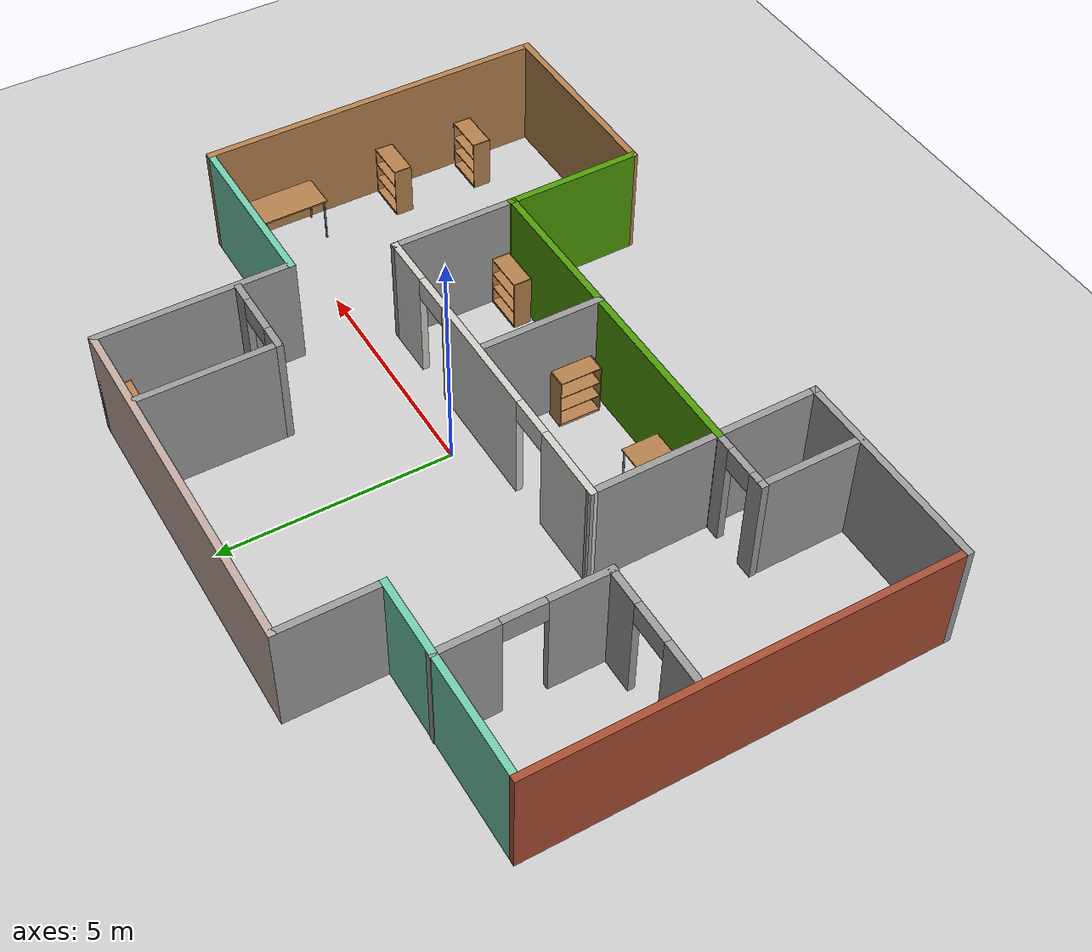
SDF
<sdf version="1.6">
 <world name="default">
  <light name="sun" type="directional">
   <pose>0 0 10 0 -0 0</pose>
   <diffuse>0.8 0.8 0.8 1</diffuse>
   <specular>0.2 0.2 0.2 1</specular>
   <attenuation>
    <range>1000</range>
    <constant>0.9</constant>
    <linear>0.01</linear>
    <quadratic>0.001</quadratic>
   </attenuation>
   <direction>-0.5 0.1 -0.9</direction>
  </light>
  <model name="ground_plane">
   <static>1</static>
   <link name="link">
    <collision name="collision">
     <geometry><plane><normal>0 0 1</normal><size>100 100</size></plane></geometry>
     <surface>
      <contact><collide_bitmask>65535</collide_bitmask></contact>
      <friction><ode><mu>100</mu><mu2>50</mu2></ode></friction>
     </surface>
    </collision>
    <visual name="visual">
     <cast_shadows>0</cast_shadows>
     <geometry><plane><normal>0 0 1</normal><size>100 100</size></plane></geometry>
     <material>
      <script><uri>file://media/materials/scripts/gazebo.material</uri><name>Gazebo/Grey</name></script>
     </material>
    </visual>
   </link>
  </model>
  <gravity>0 0 -9.8</gravity>
  <magnetic_field>6e-06 2.3e-05 -4.2e-05</magnetic_field>
  <atmosphere type="adiabatic"/>
  <physics name="default_physics" default="0" type="ode">
   <max_step_size>0.001</max_step_size>
   <real_time_factor>1</real_time_factor>
   <real_time_update_rate>1000</real_time_update_rate>
  </physics>
  <scene><ambient>0.4 0.4 0.4 1</ambient><background>0.7 0.7 0.7 1</background><shadows>1</shadows></scene>
  <audio><device>default</device></audio>
  <spherical_coordinates>
   <surface_model>EARTH_WGS84</surface_model>
   <latitude_deg>0</latitude_deg>
   <longitude_deg>0</longitude_deg>
   <elevation>0</elevation>
   <heading_deg>0</heading_deg>
  </spherical_coordinates>
  <model name="details-world">
   <pose>-0.21143 -0.40353 0 0 -0 0</pose>
   <link name="Wall_10">
    <collision name="Wall_10_Collision">
     <geometry><box><size>4.5 0.15 2.5</size></box></geometry>
     <pose>0 0 1.25 0 -0 0</pose>
    </collision>
    <visual name="Wall_10_Visual">
     <pose>0 0 1.25 0 -0 0</pose>
     <geometry><box><size>4.5 0.15 2.5</size></box></geometry>
     <material>
      <script><uri>file://media/materials/scripts/gazebo.material</uri><name>Gazebo/Grey</name></script>
      <ambient>1 1 1 1</ambient>
     </material>
     <meta><layer>0</layer></meta>
    </visual>
    <pose>-5.85 -5.09966 0 0 -0 3.14159</pose>
   </link>
   <link name="Wall_11">
    <collision name="Wall_11_Collision">
     <geometry><box><size>9 0.15 2.5</size></box></geometry>
     <pose>0 0 1.25 0 -0 0</pose>
    </collision>
    <visual name="Wall_11_Visual">
     <pose>0 0 1.25 0 -0 0</pose>
     <geometry><box><size>9 0.15 2.5</size></box></geometry>
     <material>
      <script><uri>file://media/materials/scripts/gazebo.material</uri><name>Gazebo/Bricks</name></script>
      <ambient>1 1 1 1</ambient>
     </material>
     <meta><layer>0</layer></meta>
    </visual>
    <pose>-8.025 -0.674659 0 0 -0 1.5708</pose>
   </link>
   <link name="Wall_12">
    <collision name="Wall_12_Collision">
     <geometry><box><size>4.5 0.15 2.5</size></box></geometry>
     <pose>0 0 1.25 0 -0 0</pose>
    </collision>
    <visual name="Wall_12_Visual">
     <pose>0 0 1.25 0 -0 0</pose>
     <geometry><box><size>4.5 0.15 2.5</size></box></geometry>
     <material>
      <script><uri>file://media/materials/scripts/gazebo.material</uri><name>Gazebo/Grey</name></script>
      <ambient>0.435294 0.796078 0.67451 1</ambient>
     </material>
     <meta><layer>0</layer></meta>
    </visual>
    <pose>-5.85 3.75034 0 0 -0 0</pose>
   </link>
   <link name="Wall_13">
    <collision name="Wall_13_Collision">
     <geometry><box><size>2.25 0.15 2.5</size></box></geometry>
     <pose>0 0 1.25 0 -0 0</pose>
    </collision>
    <visual name="Wall_13_Visual">
     <pose>0 0 1.25 0 -0 0</pose>
     <geometry><box><size>2.25 0.15 2.5</size></box></geometry>
     <material>
      <script><uri>file://media/materials/scripts/gazebo.material</uri><name>Gazebo/Grey</name></script>
      <ambient>1 1 1 1</ambient>
     </material>
     <meta><layer>0</layer></meta>
    </visual>
    <pose>-3.675 4.80034 0 0 -0 1.5708</pose>
   </link>
   <link name="Wall_17">
    <pose>3.23092 2.89683 0 0 -0 3.14159</pose>
    <visual name="Wall_17_Visual_0">
     <pose>-0.732822 0 1.25 0 -0 0</pose>
     <geometry><box><size>0.534355 0.15 2.5</size></box></geometry>
     <material>
      <script><uri>file://media/materials/scripts/gazebo.material</uri><name>Gazebo/Grey</name></script>
      <ambient>1 1 1 1</ambient>
     </material>
     <meta><layer>0</layer></meta>
    </visual>
    <collision name="Wall_17_Collision_0">
     <geometry><box><size>0.534355 0.15 2.5</size></box></geometry>
     <pose>-0.732822 0 1.25 0 -0 0</pose>
    </collision>
    <visual name="Wall_17_Visual_1">
     <pose>0.717178 0 1.25 0 -0 0</pose>
     <geometry><box><size>0.565645 0.15 2.5</size></box></geometry>
     <material>
      <script><uri>file://media/materials/scripts/gazebo.material</uri><name>Gazebo/Grey</name></script>
      <ambient>1 1 1 1</ambient>
     </material>
     <meta><layer>0</layer></meta>
    </visual>
    <collision name="Wall_17_Collision_1">
     <geometry><box><size>0.565645 0.15 2.5</size></box></geometry>
     <pose>0.717178 0 1.25 0 -0 0</pose>
    </collision>
    <visual name="Wall_17_Visual_2">
     <pose>-0.015645 0 2.25 0 -0 0</pose>
     <geometry><box><size>0.9 0.15 0.5</size></box></geometry>
     <material>
      <script><uri>file://media/materials/scripts/gazebo.material</uri><name>Gazebo/Grey</name></script>
      <ambient>1 1 1 1</ambient>
     </material>
     <meta><layer>0</layer></meta>
    </visual>
    <collision name="Wall_17_Collision_2">
     <geometry><box><size>0.9 0.15 0.5</size></box></geometry>
     <pose>-0.015645 0 2.25 0 -0 0</pose>
    </collision>
   </link>
   <link name="Wall_18">
    <collision name="Wall_18_Collision">
     <geometry><box><size>3 0.15 2.5</size></box></geometry>
     <pose>0 0 1.25 0 -0 0</pose>
    </collision>
    <visual name="Wall_18_Visual">
     <pose>0 0 1.25 0 -0 0</pose>
     <geometry><box><size>3 0.15 2.5</size></box></geometry>
     <material>
      <script><uri>file://media/materials/scripts/gazebo.material</uri><name>Gazebo/Grey</name></script>
      <ambient>1 1 1 1</ambient>
     </material>
     <meta><layer>0</layer></meta>
    </visual>
    <pose>2.30592 4.32183 0 0 -0 1.5708</pose>
   </link>
   <link name="Wall_2">
    <collision name="Wall_2_Collision">
     <geometry><box><size>8 0.15 2.5</size></box></geometry>
     <pose>0 0 1.25 0 -0 0</pose>
    </collision>
    <visual name="Wall_2_Visual">
     <pose>0 0 1.25 0 -0 0</pose>
     <geometry><box><size>8 0.15 2.5</size></box></geometry>
     <material>
      <script><uri>file://media/materials/scripts/gazebo.material</uri><name>Gazebo/Grey</name></script>
      <ambient>0.760784 0.662745 0.627451 1</ambient>
     </material>
     <meta><layer>0</layer></meta>
    </visual>
    <pose>0.25 5.85034 0 0 -0 0</pose>
   </link>
   <link name="Wall_23">
    <pose>-0.0399 -0.285362 0 0 -0 0</pose>
    <visual name="Wall_23_Visual_0">
     <pose>-2.91108 0 1.25 0 -0 0</pose>
     <geometry><box><size>1.67783 0.15 2.5</size></box></geometry>
     <material>
      <script><uri>file://media/materials/scripts/gazebo.material</uri><name>Gazebo/CeilingTiled</name></script>
      <ambient>1 1 1 1</ambient>
     </material>
     <meta><layer>0</layer></meta>
    </visual>
    <collision name="Wall_23_Collision_0">
     <geometry><box><size>1.67783 0.15 2.5</size></box></geometry>
     <pose>-2.91108 0 1.25 0 -0 0</pose>
    </collision>
    <visual name="Wall_23_Visual_1">
     <pose>0.250422 0 1.25 0 -0 0</pose>
     <geometry><box><size>2.84517 0.15 2.5</size></box></geometry>
     <material>
      <script><uri>file://media/materials/scripts/gazebo.material</uri><name>Gazebo/CeilingTiled</name></script>
      <ambient>1 1 1 1</ambient>
     </material>
     <meta><layer>0</layer></meta>
    </visual>
    <collision name="Wall_23_Collision_1">
     <geometry><box><size>2.84517 0.15 2.5</size></box></geometry>
     <pose>0.250422 0 1.25 0 -0 0</pose>
    </collision>
    <visual name="Wall_23_Visual_2">
     <pose>3.16151 0 1.25 0 -0 0</pose>
     <geometry><box><size>1.17699 0.15 2.5</size></box></geometry>
     <material>
      <script><uri>file://media/materials/scripts/gazebo.material</uri><name>Gazebo/CeilingTiled</name></script>
      <ambient>1 1 1 1</ambient>
     </material>
     <meta><layer>0</layer></meta>
    </visual>
    <collision name="Wall_23_Collision_2">
     <geometry><box><size>1.17699 0.15 2.5</size></box></geometry>
     <pose>3.16151 0 1.25 0 -0 0</pose>
    </collision>
    <visual name="Wall_23_Visual_3">
     <pose>-1.62217 0 2.25 0 -0 0</pose>
     <geometry><box><size>0.9 0.15 0.5</size></box></geometry>
     <material>
      <script><uri>file://media/materials/scripts/gazebo.material</uri><name>Gazebo/CeilingTiled</name></script>
      <ambient>1 1 1 1</ambient>
     </material>
     <meta><layer>0</layer></meta>
    </visual>
    <collision name="Wall_23_Collision_3">
     <geometry><box><size>0.9 0.15 0.5</size></box></geometry>
     <pose>-1.62217 0 2.25 0 -0 0</pose>
    </collision>
    <visual name="Wall_23_Visual_4">
     <pose>2.12301 0 2.25 0 -0 0</pose>
     <geometry><box><size>0.9 0.15 0.5</size></box></geometry>
     <material>
      <script><uri>file://media/materials/scripts/gazebo.material</uri><name>Gazebo/CeilingTiled</name></script>
      <ambient>1 1 1 1</ambient>
     </material>
     <meta><layer>0</layer></meta>
    </visual>
    <collision name="Wall_23_Collision_4">
     <geometry><box><size>0.9 0.15 0.5</size></box></geometry>
     <pose>2.12301 0 2.25 0 -0 0</pose>
    </collision>
   </link>
   <link name="Wall_24">
    <collision name="Wall_24_Collision">
     <geometry><box><size>2.79139 0.15 2.5</size></box></geometry>
     <pose>0 0 1.25 0 -0 0</pose>
    </collision>
    <visual name="Wall_24_Visual">
     <pose>0 0 1.25 0 -0 0</pose>
     <geometry><box><size>2.79139 0.15 2.5</size></box></geometry>
     <material>
      <script><uri>file://media/materials/scripts/gazebo.material</uri><name>Gazebo/Grey</name></script>
      <ambient>1 1 1 1</ambient>
     </material>
     <meta><layer>0</layer></meta>
    </visual>
    <pose>3.64832 -1.60604 0 0 -0 -1.57085</pose>
   </link>
   <link name="Wall_26">
    <collision name="Wall_26_Collision">
     <geometry><box><size>2.75 0.15 2.5</size></box></geometry>
     <pose>0 0 1.25 0 -0 0</pose>
    </collision>
    <visual name="Wall_26_Visual">
     <pose>0 0 1.25 0 -0 0</pose>
     <geometry><box><size>2.75 0.15 2.5</size></box></geometry>
     <material>
      <script><uri>file://media/materials/scripts/gazebo.material</uri><name>Gazebo/Grey</name></script>
      <ambient>1 1 1 1</ambient>
     </material>
     <meta><layer>0</layer></meta>
    </visual>
    <pose>0.330676 -1.65012 0 0 -0 1.5708</pose>
   </link>
   <link name="Wall_28">
    <pose>-5.34059 2.03423 0 0 -0 -1.5708</pose>
    <visual name="Wall_28_Visual_0">
     <pose>-1.13129 0 1.25 0 -0 0</pose>
     <geometry><box><size>1.34784 0.15 2.5</size></box></geometry>
     <material>
      <script><uri>file://media/materials/scripts/gazebo.material</uri><name>Gazebo/Grey</name></script>
      <ambient>1 1 1 1</ambient>
     </material>
     <meta><layer>0</layer></meta>
    </visual>
    <collision name="Wall_28_Collision_0">
     <geometry><box><size>1.34784 0.15 2.5</size></box></geometry>
     <pose>-1.13129 0 1.25 0 -0 0</pose>
    </collision>
    <visual name="Wall_28_Visual_1">
     <pose>1.12392 0 1.25 0 -0 0</pose>
     <geometry><box><size>1.36258 0.15 2.5</size></box></geometry>
     <material>
      <script><uri>file://media/materials/scripts/gazebo.material</uri><name>Gazebo/Grey</name></script>
      <ambient>1 1 1 1</ambient>
     </material>
     <meta><layer>0</layer></meta>
    </visual>
    <collision name="Wall_28_Collision_1">
     <geometry><box><size>1.36258 0.15 2.5</size></box></geometry>
     <pose>1.12392 0 1.25 0 -0 0</pose>
    </collision>
    <visual name="Wall_28_Visual_2">
     <pose>-0.007369 0 2.25 0 -0 0</pose>
     <geometry><box><size>0.9 0.15 0.5</size></box></geometry>
     <material>
      <script><uri>file://media/materials/scripts/gazebo.material</uri><name>Gazebo/Grey</name></script>
      <ambient>1 1 1 1</ambient>
     </material>
     <meta><layer>0</layer></meta>
    </visual>
    <collision name="Wall_28_Collision_2">
     <geometry><box><size>0.9 0.15 0.5</size></box></geometry>
     <pose>-0.007369 0 2.25 0 -0 0</pose>
    </collision>
   </link>
   <link name="Wall_29">
    <pose>-6.64059 0.327279 0 0 -0 3.14159</pose>
    <visual name="Wall_29_Visual_0">
     <pose>-0.933846 0 1.25 0 -0 0</pose>
     <geometry><box><size>0.882309 0.15 2.5</size></box></geometry>
     <material>
      <script><uri>file://media/materials/scripts/gazebo.material</uri><name>Gazebo/Grey</name></script>
      <ambient>1 1 1 1</ambient>
     </material>
     <meta><layer>0</layer></meta>
    </visual>
    <collision name="Wall_29_Collision_0">
     <geometry><box><size>0.882309 0.15 2.5</size></box></geometry>
     <pose>-0.933846 0 1.25 0 -0 0</pose>
    </collision>
    <visual name="Wall_29_Visual_1">
     <pose>0.891154 0 1.25 0 -0 0</pose>
     <geometry><box><size>0.967691 0.15 2.5</size></box></geometry>
     <material>
      <script><uri>file://media/materials/scripts/gazebo.material</uri><name>Gazebo/Grey</name></script>
      <ambient>1 1 1 1</ambient>
     </material>
     <meta><layer>0</layer></meta>
    </visual>
    <collision name="Wall_29_Collision_1">
     <geometry><box><size>0.967691 0.15 2.5</size></box></geometry>
     <pose>0.891154 0 1.25 0 -0 0</pose>
    </collision>
    <visual name="Wall_29_Visual_2">
     <pose>-0.042691 0 2.25 0 -0 0</pose>
     <geometry><box><size>0.9 0.15 0.5</size></box></geometry>
     <material>
      <script><uri>file://media/materials/scripts/gazebo.material</uri><name>Gazebo/Grey</name></script>
      <ambient>1 1 1 1</ambient>
     </material>
     <meta><layer>0</layer></meta>
    </visual>
    <collision name="Wall_29_Collision_2">
     <geometry><box><size>0.9 0.15 0.5</size></box></geometry>
     <pose>-0.042691 0 2.25 0 -0 0</pose>
    </collision>
   </link>
   <link name="Wall_3">
    <collision name="Wall_3_Collision">
     <geometry><box><size>4.25 0.15 2.5</size></box></geometry>
     <pose>0 0 1.25 0 -0 0</pose>
    </collision>
    <visual name="Wall_3_Visual">
     <pose>0 0 1.25 0 -0 0</pose>
     <geometry><box><size>4.25 0.15 2.5</size></box></geometry>
     <material>
      <script><uri>file://media/materials/scripts/gazebo.material</uri><name>Gazebo/Grey</name></script>
      <ambient>1 1 1 1</ambient>
     </material>
     <meta><layer>0</layer></meta>
    </visual>
    <pose>4.175 3.80034 0 0 -0 -1.5708</pose>
   </link>
   <link name="Wall_31">
    <pose>-4.39906 -2.95396 0 0 -0 3.14159</pose>
    <visual name="Wall_31_Visual_0">
     <pose>-0.526854 0 1.25 0 -0 0</pose>
     <geometry><box><size>0.446292 0.15 2.5</size></box></geometry>
     <material>
      <script><uri>file://media/materials/scripts/gazebo.material</uri><name>Gazebo/Grey</name></script>
      <ambient>1 1 1 1</ambient>
     </material>
     <meta><layer>0</layer></meta>
    </visual>
    <collision name="Wall_31_Collision_0">
     <geometry><box><size>0.446292 0.15 2.5</size></box></geometry>
     <pose>-0.526854 0 1.25 0 -0 0</pose>
    </collision>
    <visual name="Wall_31_Visual_1">
     <pose>0.553445 0 1.25 0 -0 0</pose>
     <geometry><box><size>0.39311 0.15 2.5</size></box></geometry>
     <material>
      <script><uri>file://media/materials/scripts/gazebo.material</uri><name>Gazebo/Grey</name></script>
      <ambient>1 1 1 1</ambient>
     </material>
     <meta><layer>0</layer></meta>
    </visual>
    <collision name="Wall_31_Collision_1">
     <geometry><box><size>0.39311 0.15 2.5</size></box></geometry>
     <pose>0.553445 0 1.25 0 -0 0</pose>
    </collision>
    <visual name="Wall_31_Visual_2">
     <pose>0.026591 0 2.25 0 -0 0</pose>
     <geometry><box><size>0.660598 0.15 0.5</size></box></geometry>
     <material>
      <script><uri>file://media/materials/scripts/gazebo.material</uri><name>Gazebo/Grey</name></script>
      <ambient>1 1 1 1</ambient>
     </material>
     <meta><layer>0</layer></meta>
    </visual>
    <collision name="Wall_31_Collision_2">
     <geometry><box><size>0.660598 0.15 0.5</size></box></geometry>
     <pose>0.026591 0 2.25 0 -0 0</pose>
    </collision>
   </link>
   <link name="Wall_32">
    <collision name="Wall_32_Collision">
     <geometry><box><size>2.23087 0.15 2.5</size></box></geometry>
     <pose>0 0 1.25 0 -0 0</pose>
    </collision>
    <visual name="Wall_32_Visual">
     <pose>0 0 1.25 0 -0 0</pose>
     <geometry><box><size>2.23087 0.15 2.5</size></box></geometry>
     <material>
      <script><uri>file://media/materials/scripts/gazebo.material</uri><name>Gazebo/Grey</name></script>
      <ambient>1 1 1 1</ambient>
     </material>
     <meta><layer>0</layer></meta>
    </visual>
    <pose>-5.05876 -4.00969 0 0 -0 -1.5708</pose>
   </link>
   <link name="Wall_36">
    <collision name="Wall_36_Collision">
     <geometry><box><size>4.96446 0.15 2.5</size></box></geometry>
     <pose>0 0 1.25 0 -0 0</pose>
    </collision>
    <visual name="Wall_36_Visual">
     <pose>0 0 1.25 0 -0 0</pose>
     <geometry><box><size>4.96446 0.15 2.5</size></box></geometry>
     <material>
      <script><uri>file://media/materials/scripts/gazebo.material</uri><name>Gazebo/Grey</name></script>
      <ambient>1 1 1 1</ambient>
     </material>
     <meta><layer>0</layer></meta>
    </visual>
    <pose>-3.69495 -2.69251 0 0 -0 -1.56251</pose>
   </link>
   <link name="Wall_4">
    <collision name="Wall_4_Collision">
     <geometry><box><size>4 0.15 2.5</size></box></geometry>
     <pose>0 0 1.25 0 -0 0</pose>
    </collision>
    <visual name="Wall_4_Visual">
     <pose>0 0 1.25 0 -0 0</pose>
     <geometry><box><size>4 0.15 2.5</size></box></geometry>
     <material>
      <script><uri>file://media/materials/scripts/gazebo.material</uri><name>Gazebo/Grey</name></script>
      <ambient>0.435294 0.796078 0.67451 1</ambient>
     </material>
     <meta><layer>0</layer></meta>
    </visual>
    <pose>6.1 1.75034 0 0 -0 0</pose>
   </link>
   <link name="Wall_5">
    <collision name="Wall_5_Collision">
     <geometry><box><size>7.75 0.15 2.5</size></box></geometry>
     <pose>0 0 1.25 0 -0 0</pose>
    </collision>
    <visual name="Wall_5_Visual">
     <pose>0 0 1.25 0 -0 0</pose>
     <geometry><box><size>7.75 0.15 2.5</size></box></geometry>
     <material>
      <script><uri>file://media/materials/scripts/gazebo.material</uri><name>Gazebo/Wood</name></script>
      <ambient>1 1 1 1</ambient>
     </material>
     <meta><layer>0</layer></meta>
    </visual>
    <pose>8.025 -2.04966 0 0 -0 -1.5708</pose>
   </link>
   <link name="Wall_6">
    <collision name="Wall_6_Collision">
     <geometry><box><size>4.5 0.15 2.5</size></box></geometry>
     <pose>0 0 1.25 0 -0 0</pose>
    </collision>
    <visual name="Wall_6_Visual">
     <pose>0 0 1.25 0 -0 0</pose>
     <geometry><box><size>4.5 0.15 2.5</size></box></geometry>
     <material>
      <script><uri>file://media/materials/scripts/gazebo.material</uri><name>Gazebo/Wood</name></script>
      <ambient>1 1 1 1</ambient>
     </material>
     <meta><layer>0</layer></meta>
    </visual>
    <pose>5.85 -5.84966 0 0 -0 3.14159</pose>
   </link>
   <link name="Wall_7">
    <collision name="Wall_7_Collision">
     <geometry><box><size>3.07307 0.15 2.5</size></box></geometry>
     <pose>0 0 1.25 0 -0 0</pose>
    </collision>
    <visual name="Wall_7_Visual">
     <pose>0 0 1.25 0 -0 0</pose>
     <geometry><box><size>3.07307 0.15 2.5</size></box></geometry>
     <material>
      <script><uri>file://media/materials/scripts/gazebo.material</uri><name>Gazebo/Grey</name></script>
      <ambient>0.305882 0.603922 0.0235294 1</ambient>
     </material>
     <meta><layer>0</layer></meta>
    </visual>
    <pose>3.66162 -4.38819 0 0 -0 1.57995</pose>
   </link>
   <link name="Wall_8">
    <collision name="Wall_8_Collision">
     <geometry><box><size>7.5 0.15 2.5</size></box></geometry>
     <pose>0 0 1.25 0 -0 0</pose>
    </collision>
    <visual name="Wall_8_Visual">
     <pose>0 0 1.25 0 -0 0</pose>
     <geometry><box><size>7.5 0.15 2.5</size></box></geometry>
     <material>
      <script><uri>file://media/materials/scripts/gazebo.material</uri><name>Gazebo/Grey</name></script>
      <ambient>0.305882 0.603922 0.0235294 1</ambient>
     </material>
     <meta><layer>0</layer></meta>
    </visual>
    <pose>-0.026751 -2.95347 0 0 -0 3.14159</pose>
   </link>
   <static>1</static>
  </model>
  <model name="table">
   <static>1</static>
   <link name="link">
    <collision name="surface">
     <pose>0 0 1 0 -0 0</pose>
     <geometry><box><size>1.5 0.8 0.03</size></box></geometry>
     <surface><friction><ode><mu>0.6</mu><mu2>0.6</mu2></ode></friction></surface>
    </collision>
    <visual name="visual1">
     <pose>0 0 1 0 -0 0</pose>
     <geometry><box><size>1.5 0.8 0.03</size></box></geometry>
     <material>
      <script><uri>file://media/materials/scripts/gazebo.material</uri><name>Gazebo/Wood</name></script>
     </material>
    </visual>
    <collision name="front_left_leg">
     <pose>0.68 0.38 0.5 0 -0 0</pose>
     <geometry><cylinder><radius>0.02</radius><length>1</length></cylinder></geometry>
    </collision>
    <visual name="front_left_leg">
     <pose>0.68 0.38 0.5 0 -0 0</pose>
     <geometry><cylinder><radius>0.02</radius><length>1</length></cylinder></geometry>
     <material>
      <script><uri>file://media/materials/scripts/gazebo.material</uri><name>Gazebo/Grey</name></script>
     </material>
    </visual>
    <collision name="front_right_leg">
     <pose>0.68 -0.38 0.5 0 -0 0</pose>
     <geometry><cylinder><radius>0.02</radius><length>1</length></cylinder></geometry>
    </collision>
    <visual name="front_right_leg">
     <pose>0.68 -0.38 0.5 0 -0 0</pose>
     <geometry><cylinder><radius>0.02</radius><length>1</length></cylinder></geometry>
     <material>
      <script><uri>file://media/materials/scripts/gazebo.material</uri><name>Gazebo/Grey</name></script>
     </material>
    </visual>
    <collision name="back_right_leg">
     <pose>-0.68 -0.38 0.5 0 -0 0</pose>
     <geometry><cylinder><radius>0.02</radius><length>1</length></cylinder></geometry>
    </collision>
    <visual name="back_right_leg">
     <pose>-0.68 -0.38 0.5 0 -0 0</pose>
     <geometry><cylinder><radius>0.02</radius><length>1</length></cylinder></geometry>
     <material>
      <script><uri>file://media/materials/scripts/gazebo.material</uri><name>Gazebo/Grey</name></script>
     </material>
    </visual>
    <collision name="back_left_leg">
     <pose>-0.68 0.38 0.5 0 -0 0</pose>
     <geometry><cylinder><radius>0.02</radius><length>1</length></cylinder></geometry>
    </collision>
    <visual name="back_left_leg">
     <pose>-0.68 0.38 0.5 0 -0 0</pose>
     <geometry><cylinder><radius>0.02</radius><length>1</length></cylinder></geometry>
     <material>
      <script><uri>file://media/materials/scripts/gazebo.material</uri><name>Gazebo/Grey</name></script>
     </material>
    </visual>
   </link>
   <pose>-3.02011 -2.82263 0 0 -0 0</pose>
  </model>
  <model name="bookshelf">
   <static>1</static>
   <link name="link">
    <inertial><mass>1</mass></inertial>
    <collision name="back">
     <pose>0 0.005 0.6 0 -0 0</pose>
     <geometry><box><size>0.9 0.01 1.2</size></box></geometry>
    </collision>
    <visual name="visual1">
     <pose>0 0.005 0.6 0 -0 0</pose>
     <geometry><box><size>0.9 0.01 1.2</size></box></geometry>
     <material>
      <script><uri>file://media/materials/scripts/gazebo.material</uri><name>Gazebo/Wood</name></script>
     </material>
    </visual>
    <collision name="left_side">
     <pose>0.45 -0.195 0.6 0 -0 0</pose>
     <geometry><box><size>0.02 0.4 1.2</size></box></geometry>
    </collision>
    <visual name="visual2">
     <pose>0.45 -0.195 0.6 0 -0 0</pose>
     <geometry><box><size>0.02 0.4 1.2</size></box></geometry>
     <material>
      <script><uri>file://media/materials/scripts/gazebo.material</uri><name>Gazebo/Wood</name></script>
     </material>
    </visual>
    <collision name="right_side">
     <pose>-0.45 -0.195 0.6 0 -0 0</pose>
     <geometry><box><size>0.02 0.4 1.2</size></box></geometry>
    </collision>
    <visual name="visual3">
     <pose>-0.45 -0.195 0.6 0 -0 0</pose>
     <geometry><box><size>0.02 0.4 1.2</size></box></geometry>
     <material>
      <script><uri>file://media/materials/scripts/gazebo.material</uri><name>Gazebo/Wood</name></script>
     </material>
    </visual>
    <collision name="bottom">
     <pose>0 -0.195 0.03 0 -0 0</pose>
     <geometry><box><size>0.88 0.4 0.06</size></box></geometry>
    </collision>
    <visual name="visual4">
     <pose>0 -0.195 0.03 0 -0 0</pose>
     <geometry><box><size>0.88 0.4 0.06</size></box></geometry>
     <material>
      <script><uri>file://media/materials/scripts/gazebo.material</uri><name>Gazebo/Wood</name></script>
     </material>
    </visual>
    <collision name="top">
     <pose>0 -0.195 1.19 0 -0 0</pose>
     <geometry><box><size>0.88 0.4 0.02</size></box></geometry>
    </collision>
    <visual name="visual5">
     <pose>0 -0.195 1.19 0 -0 0</pose>
     <geometry><box><size>0.88 0.4 0.02</size></box></geometry>
     <material>
      <script><uri>file://media/materials/scripts/gazebo.material</uri><name>Gazebo/Wood</name></script>
     </material>
    </visual>
    <collision name="low_shelf">
     <pose>0 -0.195 0.43 0 -0 0</pose>
     <geometry><box><size>0.88 0.4 0.02</size></box></geometry>
    </collision>
    <visual name="visual6">
     <pose>0 -0.195 0.43 0 -0 0</pose>
     <geometry><box><size>0.88 0.4 0.02</size></box></geometry>
     <material>
      <script><uri>file://media/materials/scripts/gazebo.material</uri><name>Gazebo/Wood</name></script>
     </material>
    </visual>
    <collision name="high_shelf">
     <pose>0 -0.195 0.8 0 -0 0</pose>
     <geometry><box><size>0.88 0.4 0.02</size></box></geometry>
    </collision>
    <visual name="visual7">
     <pose>0 -0.195 0.8 0 -0 0</pose>
     <geometry><box><size>0.88 0.4 0.02</size></box></geometry>
     <material>
      <script><uri>file://media/materials/scripts/gazebo.material</uri><name>Gazebo/Wood</name></script>
     </material>
    </visual>
   </link>
   <pose>4.01609 -4.70384 0 0 -0 3.13362</pose>
  </model>
  <model name="bookshelf_clone">
   <static>1</static>
   <link name="link">
    <inertial><mass>1</mass></inertial>
    <collision name="back">
     <pose>0 0.005 0.6 0 -0 0</pose>
     <geometry><box><size>0.9 0.01 1.2</size></box></geometry>
    </collision>
    <visual name="visual1">
     <pose>0 0.005 0.6 0 -0 0</pose>
     <geometry><box><size>0.9 0.01 1.2</size></box></geometry>
     <material>
      <script><uri>file://media/materials/scripts/gazebo.material</uri><name>Gazebo/Wood</name></script>
     </material>
    </visual>
    <collision name="left_side">
     <pose>0.45 -0.195 0.6 0 -0 0</pose>
     <geometry><box><size>0.02 0.4 1.2</size></box></geometry>
    </collision>
    <visual name="visual2">
     <pose>0.45 -0.195 0.6 0 -0 0</pose>
     <geometry><box><size>0.02 0.4 1.2</size></box></geometry>
     <material>
      <script><uri>file://media/materials/scripts/gazebo.material</uri><name>Gazebo/Wood</name></script>
     </material>
    </visual>
    <collision name="right_side">
     <pose>-0.45 -0.195 0.6 0 -0 0</pose>
     <geometry><box><size>0.02 0.4 1.2</size></box></geometry>
    </collision>
    <visual name="visual3">
     <pose>-0.45 -0.195 0.6 0 -0 0</pose>
     <geometry><box><size>0.02 0.4 1.2</size></box></geometry>
     <material>
      <script><uri>file://media/materials/scripts/gazebo.material</uri><name>Gazebo/Wood</name></script>
     </material>
    </visual>
    <collision name="bottom">
     <pose>0 -0.195 0.03 0 -0 0</pose>
     <geometry><box><size>0.88 0.4 0.06</size></box></geometry>
    </collision>
    <visual name="visual4">
     <pose>0 -0.195 0.03 0 -0 0</pose>
     <geometry><box><size>0.88 0.4 0.06</size></box></geometry>
     <material>
      <script><uri>file://media/materials/scripts/gazebo.material</uri><name>Gazebo/Wood</name></script>
     </material>
    </visual>
    <collision name="top">
     <pose>0 -0.195 1.19 0 -0 0</pose>
     <geometry><box><size>0.88 0.4 0.02</size></box></geometry>
    </collision>
    <visual name="visual5">
     <pose>0 -0.195 1.19 0 -0 0</pose>
     <geometry><box><size>0.88 0.4 0.02</size></box></geometry>
     <material>
      <script><uri>file://media/materials/scripts/gazebo.material</uri><name>Gazebo/Wood</name></script>
     </material>
    </visual>
    <collision name="low_shelf">
     <pose>0 -0.195 0.43 0 -0 0</pose>
     <geometry><box><size>0.88 0.4 0.02</size></box></geometry>
    </collision>
    <visual name="visual6">
     <pose>0 -0.195 0.43 0 -0 0</pose>
     <geometry><box><size>0.88 0.4 0.02</size></box></geometry>
     <material>
      <script><uri>file://media/materials/scripts/gazebo.material</uri><name>Gazebo/Wood</name></script>
     </material>
    </visual>
    <collision name="high_shelf">
     <pose>0 -0.195 0.8 0 -0 0</pose>
     <geometry><box><size>0.88 0.4 0.02</size></box></geometry>
    </collision>
    <visual name="visual7">
     <pose>0 -0.195 0.8 0 -0 0</pose>
     <geometry><box><size>0.88 0.4 0.02</size></box></geometry>
     <material>
      <script><uri>file://media/materials/scripts/gazebo.material</uri><name>Gazebo/Wood</name></script>
     </material>
    </visual>
   </link>
   <pose>7.21 -4.68551 0 0 -0 3.13362</pose>
  </model>
  <model name="bookshelf_clone_0">
   <static>1</static>
   <link name="link">
    <inertial><mass>1</mass></inertial>
    <collision name="back">
     <pose>0 0.005 0.6 0 -0 0</pose>
     <geometry><box><size>0.9 0.01 1.2</size></box></geometry>
    </collision>
    <visual name="visual1">
     <pose>0 0.005 0.6 0 -0 0</pose>
     <geometry><box><size>0.9 0.01 1.2</size></box></geometry>
     <material>
      <script><uri>file://media/materials/scripts/gazebo.material</uri><name>Gazebo/Wood</name></script>
     </material>
    </visual>
    <collision name="left_side">
     <pose>0.45 -0.195 0.6 0 -0 0</pose>
     <geometry><box><size>0.02 0.4 1.2</size></box></geometry>
    </collision>
    <visual name="visual2">
     <pose>0.45 -0.195 0.6 0 -0 0</pose>
     <geometry><box><size>0.02 0.4 1.2</size></box></geometry>
     <material>
      <script><uri>file://media/materials/scripts/gazebo.material</uri><name>Gazebo/Wood</name></script>
     </material>
    </visual>
    <collision name="right_side">
     <pose>-0.45 -0.195 0.6 0 -0 0</pose>
     <geometry><box><size>0.02 0.4 1.2</size></box></geometry>
    </collision>
    <visual name="visual3">
     <pose>-0.45 -0.195 0.6 0 -0 0</pose>
     <geometry><box><size>0.02 0.4 1.2</size></box></geometry>
     <material>
      <script><uri>file://media/materials/scripts/gazebo.material</uri><name>Gazebo/Wood</name></script>
     </material>
    </visual>
    <collision name="bottom">
     <pose>0 -0.195 0.03 0 -0 0</pose>
     <geometry><box><size>0.88 0.4 0.06</size></box></geometry>
    </collision>
    <visual name="visual4">
     <pose>0 -0.195 0.03 0 -0 0</pose>
     <geometry><box><size>0.88 0.4 0.06</size></box></geometry>
     <material>
      <script><uri>file://media/materials/scripts/gazebo.material</uri><name>Gazebo/Wood</name></script>
     </material>
    </visual>
    <collision name="top">
     <pose>0 -0.195 1.19 0 -0 0</pose>
     <geometry><box><size>0.88 0.4 0.02</size></box></geometry>
    </collision>
    <visual name="visual5">
     <pose>0 -0.195 1.19 0 -0 0</pose>
     <geometry><box><size>0.88 0.4 0.02</size></box></geometry>
     <material>
      <script><uri>file://media/materials/scripts/gazebo.material</uri><name>Gazebo/Wood</name></script>
     </material>
    </visual>
    <collision name="low_shelf">
     <pose>0 -0.195 0.43 0 -0 0</pose>
     <geometry><box><size>0.88 0.4 0.02</size></box></geometry>
    </collision>
    <visual name="visual6">
     <pose>0 -0.195 0.43 0 -0 0</pose>
     <geometry><box><size>0.88 0.4 0.02</size></box></geometry>
     <material>
      <script><uri>file://media/materials/scripts/gazebo.material</uri><name>Gazebo/Wood</name></script>
     </material>
    </visual>
    <collision name="high_shelf">
     <pose>0 -0.195 0.8 0 -0 0</pose>
     <geometry><box><size>0.88 0.4 0.02</size></box></geometry>
    </collision>
    <visual name="visual7">
     <pose>0 -0.195 0.8 0 -0 0</pose>
     <geometry><box><size>0.88 0.4 0.02</size></box></geometry>
     <material>
      <script><uri>file://media/materials/scripts/gazebo.material</uri><name>Gazebo/Wood</name></script>
     </material>
    </visual>
   </link>
   <pose>3.99907 -2.71529 0 0 -0 3.13362</pose>
  </model>
  <model name="bookshelf_clone_1">
   <static>1</static>
   <link name="link">
    <inertial><mass>1</mass></inertial>
    <collision name="back">
     <pose>0 0.005 0.6 0 -0 0</pose>
     <geometry><box><size>0.9 0.01 1.2</size></box></geometry>
    </collision>
    <visual name="visual1">
     <pose>0 0.005 0.6 0 -0 0</pose>
     <geometry><box><size>0.9 0.01 1.2</size></box></geometry>
     <material>
      <script><uri>file://media/materials/scripts/gazebo.material</uri><name>Gazebo/Wood</name></script>
     </material>
    </visual>
    <collision name="left_side">
     <pose>0.45 -0.195 0.6 0 -0 0</pose>
     <geometry><box><size>0.02 0.4 1.2</size></box></geometry>
    </collision>
    <visual name="visual2">
     <pose>0.45 -0.195 0.6 0 -0 0</pose>
     <geometry><box><size>0.02 0.4 1.2</size></box></geometry>
     <material>
      <script><uri>file://media/materials/scripts/gazebo.material</uri><name>Gazebo/Wood</name></script>
     </material>
    </visual>
    <collision name="right_side">
     <pose>-0.45 -0.195 0.6 0 -0 0</pose>
     <geometry><box><size>0.02 0.4 1.2</size></box></geometry>
    </collision>
    <visual name="visual3">
     <pose>-0.45 -0.195 0.6 0 -0 0</pose>
     <geometry><box><size>0.02 0.4 1.2</size></box></geometry>
     <material>
      <script><uri>file://media/materials/scripts/gazebo.material</uri><name>Gazebo/Wood</name></script>
     </material>
    </visual>
    <collision name="bottom">
     <pose>0 -0.195 0.03 0 -0 0</pose>
     <geometry><box><size>0.88 0.4 0.06</size></box></geometry>
    </collision>
    <visual name="visual4">
     <pose>0 -0.195 0.03 0 -0 0</pose>
     <geometry><box><size>0.88 0.4 0.06</size></box></geometry>
     <material>
      <script><uri>file://media/materials/scripts/gazebo.material</uri><name>Gazebo/Wood</name></script>
     </material>
    </visual>
    <collision name="top">
     <pose>0 -0.195 1.19 0 -0 0</pose>
     <geometry><box><size>0.88 0.4 0.02</size></box></geometry>
    </collision>
    <visual name="visual5">
     <pose>0 -0.195 1.19 0 -0 0</pose>
     <geometry><box><size>0.88 0.4 0.02</size></box></geometry>
     <material>
      <script><uri>file://media/materials/scripts/gazebo.material</uri><name>Gazebo/Wood</name></script>
     </material>
    </visual>
    <collision name="low_shelf">
     <pose>0 -0.195 0.43 0 -0 0</pose>
     <geometry><box><size>0.88 0.4 0.02</size></box></geometry>
    </collision>
    <visual name="visual6">
     <pose>0 -0.195 0.43 0 -0 0</pose>
     <geometry><box><size>0.88 0.4 0.02</size></box></geometry>
     <material>
      <script><uri>file://media/materials/scripts/gazebo.material</uri><name>Gazebo/Wood</name></script>
     </material>
    </visual>
    <collision name="high_shelf">
     <pose>0 -0.195 0.8 0 -0 0</pose>
     <geometry><box><size>0.88 0.4 0.02</size></box></geometry>
    </collision>
    <visual name="visual7">
     <pose>0 -0.195 0.8 0 -0 0</pose>
     <geometry><box><size>0.88 0.4 0.02</size></box></geometry>
     <material>
      <script><uri>file://media/materials/scripts/gazebo.material</uri><name>Gazebo/Wood</name></script>
     </material>
    </visual>
   </link>
   <pose>7.25796 -2.76045 0 0 -0 3.13362</pose>
  </model>
  <model name="bookshelf_clone_0_clone">
   <static>1</static>
   <link name="link">
    <inertial><mass>1</mass></inertial>
    <collision name="back">
     <pose>0 0.005 0.6 0 -0 0</pose>
     <geometry><box><size>0.9 0.01 1.2</size></box></geometry>
    </collision>
    <visual name="visual1">
     <pose>0 0.005 0.6 0 -0 0</pose>
     <geometry><box><size>0.9 0.01 1.2</size></box></geometry>
     <material>
      <script><uri>file://media/materials/scripts/gazebo.material</uri><name>Gazebo/Wood</name></script>
     </material>
    </visual>
    <collision name="left_side">
     <pose>0.45 -0.195 0.6 0 -0 0</pose>
     <geometry><box><size>0.02 0.4 1.2</size></box></geometry>
    </collision>
    <visual name="visual2">
     <pose>0.45 -0.195 0.6 0 -0 0</pose>
     <geometry><box><size>0.02 0.4 1.2</size></box></geometry>
     <material>
      <script><uri>file://media/materials/scripts/gazebo.material</uri><name>Gazebo/Wood</name></script>
     </material>
    </visual>
    <collision name="right_side">
     <pose>-0.45 -0.195 0.6 0 -0 0</pose>
     <geometry><box><size>0.02 0.4 1.2</size></box></geometry>
    </collision>
    <visual name="visual3">
     <pose>-0.45 -0.195 0.6 0 -0 0</pose>
     <geometry><box><size>0.02 0.4 1.2</size></box></geometry>
     <material>
      <script><uri>file://media/materials/scripts/gazebo.material</uri><name>Gazebo/Wood</name></script>
     </material>
    </visual>
    <collision name="bottom">
     <pose>0 -0.195 0.03 0 -0 0</pose>
     <geometry><box><size>0.88 0.4 0.06</size></box></geometry>
    </collision>
    <visual name="visual4">
     <pose>0 -0.195 0.03 0 -0 0</pose>
     <geometry><box><size>0.88 0.4 0.06</size></box></geometry>
     <material>
      <script><uri>file://media/materials/scripts/gazebo.material</uri><name>Gazebo/Wood</name></script>
     </material>
    </visual>
    <collision name="top">
     <pose>0 -0.195 1.19 0 -0 0</pose>
     <geometry><box><size>0.88 0.4 0.02</size></box></geometry>
    </collision>
    <visual name="visual5">
     <pose>0 -0.195 1.19 0 -0 0</pose>
     <geometry><box><size>0.88 0.4 0.02</size></box></geometry>
     <material>
      <script><uri>file://media/materials/scripts/gazebo.material</uri><name>Gazebo/Wood</name></script>
     </material>
    </visual>
    <collision name="low_shelf">
     <pose>0 -0.195 0.43 0 -0 0</pose>
     <geometry><box><size>0.88 0.4 0.02</size></box></geometry>
    </collision>
    <visual name="visual6">
     <pose>0 -0.195 0.43 0 -0 0</pose>
     <geometry><box><size>0.88 0.4 0.02</size></box></geometry>
     <material>
      <script><uri>file://media/materials/scripts/gazebo.material</uri><name>Gazebo/Wood</name></script>
     </material>
    </visual>
    <collision name="high_shelf">
     <pose>0 -0.195 0.8 0 -0 0</pose>
     <geometry><box><size>0.88 0.4 0.02</size></box></geometry>
    </collision>
    <visual name="visual7">
     <pose>0 -0.195 0.8 0 -0 0</pose>
     <geometry><box><size>0.88 0.4 0.02</size></box></geometry>
     <material>
      <script><uri>file://media/materials/scripts/gazebo.material</uri><name>Gazebo/Wood</name></script>
     </material>
    </visual>
   </link>
   <pose>2.90041 -3.2185 0 0 -0 3.13362</pose>
  </model>
  <model name="table_clone">
   <static>1</static>
   <link name="link">
    <collision name="surface">
     <pose>0 0 1 0 -0 0</pose>
     <geometry><box><size>1.5 0.8 0.03</size></box></geometry>
     <surface><friction><ode><mu>0.6</mu><mu2>0.6</mu2></ode></friction></surface>
    </collision>
    <visual name="visual1">
     <pose>0 0 1 0 -0 0</pose>
     <geometry><box><size>1.5 0.8 0.03</size></box></geometry>
     <material>
      <script><uri>file://media/materials/scripts/gazebo.material</uri><name>Gazebo/Wood</name></script>
     </material>
    </visual>
    <collision name="front_left_leg">
     <pose>0.68 0.38 0.5 0 -0 0</pose>
     <geometry><cylinder><radius>0.02</radius><length>1</length></cylinder></geometry>
    </collision>
    <visual name="front_left_leg">
     <pose>0.68 0.38 0.5 0 -0 0</pose>
     <geometry><cylinder><radius>0.02</radius><length>1</length></cylinder></geometry>
     <material>
      <script><uri>file://media/materials/scripts/gazebo.material</uri><name>Gazebo/Grey</name></script>
     </material>
    </visual>
    <collision name="front_right_leg">
     <pose>0.68 -0.38 0.5 0 -0 0</pose>
     <geometry><cylinder><radius>0.02</radius><length>1</length></cylinder></geometry>
    </collision>
    <visual name="front_right_leg">
     <pose>0.68 -0.38 0.5 0 -0 0</pose>
     <geometry><cylinder><radius>0.02</radius><length>1</length></cylinder></geometry>
     <material>
      <script><uri>file://media/materials/scripts/gazebo.material</uri><name>Gazebo/Grey</name></script>
     </material>
    </visual>
    <collision name="back_right_leg">
     <pose>-0.68 -0.38 0.5 0 -0 0</pose>
     <geometry><cylinder><radius>0.02</radius><length>1</length></cylinder></geometry>
    </collision>
    <visual name="back_right_leg">
     <pose>-0.68 -0.38 0.5 0 -0 0</pose>
     <geometry><cylinder><radius>0.02</radius><length>1</length></cylinder></geometry>
     <material>
      <script><uri>file://media/materials/scripts/gazebo.material</uri><name>Gazebo/Grey</name></script>
     </material>
    </visual>
    <collision name="back_left_leg">
     <pose>-0.68 0.38 0.5 0 -0 0</pose>
     <geometry><cylinder><radius>0.02</radius><length>1</length></cylinder></geometry>
    </collision>
    <visual name="back_left_leg">
     <pose>-0.68 0.38 0.5 0 -0 0</pose>
     <geometry><cylinder><radius>0.02</radius><length>1</length></cylinder></geometry>
     <material>
      <script><uri>file://media/materials/scripts/gazebo.material</uri><name>Gazebo/Grey</name></script>
     </material>
    </visual>
   </link>
   <pose>7.30402 -0.028214 0 0 0 -1.56616</pose>
  </model>
  <model name="cabinet">
   <static>1</static>
   <link name="cabinet_bottom_plate">
    <inertial>
     <pose>0 0 -1 0 -0 0</pose>
     <inertia><ixx>2.05</ixx><ixy>0</ixy><ixz>0</ixz><iyy>2.05</iyy><iyz>0</iyz><izz>2.05</izz></inertia>
     <mass>25</mass>
    </inertial>
    <collision name="cabinet_bottom_plate_geom">
     <pose>0 0 0.01 0 -0 0</pose>
     <geometry><box><size>0.45 0.45 0.02</size></box></geometry>
    </collision>
    <visual name="cabinet_bottom_plate_geom_visual">
     <pose>0 0 0.01 0 -0 0</pose>
     <geometry><box><size>0.45 0.45 0.02</size></box></geometry>
     <material>
      <script><uri>file://media/materials/scripts/gazebo.material</uri><name>Gazebo/Wood</name></script>
     </material>
    </visual>
    <collision name="cabinet_bottom_plate_geom_cabinet_back_plate">
     <pose>0.235 0 0.51 0 -0 0</pose>
     <geometry><box><size>0.02 0.45 1.02</size></box></geometry>
    </collision>
    <visual name="cabinet_bottom_plate_geom_cabinet_back_plate_visual">
     <pose>0.235 0 0.51 0 -0 0</pose>
     <geometry><box><size>0.02 0.45 1.02</size></box></geometry>
     <material>
      <script><uri>file://media/materials/scripts/gazebo.material</uri><name>Gazebo/Wood</name></script>
     </material>
    </visual>
    <collision name="cabinet_bottom_plate_geom_cabinet_left_plate">
     <pose>0 0.235 0.51 0 -0 0</pose>
     <geometry><box><size>0.45 0.02 1.02</size></box></geometry>
    </collision>
    <visual name="cabinet_bottom_plate_geom_cabinet_left_plate_visual">
     <pose>0 0.235 0.51 0 -0 0</pose>
     <geometry><box><size>0.45 0.02 1.02</size></box></geometry>
     <material>
      <script><uri>file://media/materials/scripts/gazebo.material</uri><name>Gazebo/Wood</name></script>
     </material>
    </visual>
    <collision name="cabinet_bottom_plate_geom_cabinet_middle_plate">
     <pose>0 0 0.51 0 -0 0</pose>
     <geometry><box><size>0.45 0.45 0.02</size></box></geometry>
    </collision>
    <visual name="cabinet_bottom_plate_geom_cabinet_middle_plate_visual">
     <pose>0 0 0.51 0 -0 0</pose>
     <geometry><box><size>0.45 0.45 0.02</size></box></geometry>
     <material>
      <script><uri>file://media/materials/scripts/gazebo.material</uri><name>Gazebo/Wood</name></script>
     </material>
    </visual>
    <collision name="cabinet_bottom_plate_geom_cabinet_right_plate">
     <pose>0 -0.235 0.51 0 -0 0</pose>
     <geometry><box><size>0.45 0.02 1.02</size></box></geometry>
    </collision>
    <visual name="cabinet_bottom_plate_geom_cabinet_right_plate_visual">
     <pose>0 -0.235 0.51 0 -0 0</pose>
     <geometry><box><size>0.45 0.02 1.02</size></box></geometry>
     <material>
      <script><uri>file://media/materials/scripts/gazebo.material</uri><name>Gazebo/Wood</name></script>
     </material>
    </visual>
    <collision name="cabinet_bottom_plate_geom_cabinet_top_plate">
     <pose>0 0 1.01 0 -0 0</pose>
     <geometry><box><size>0.45 0.45 0.02</size></box></geometry>
    </collision>
    <visual name="cabinet_bottom_plate_geom_cabinet_top_plate_visual">
     <pose>0 0 1.01 0 -0 0</pose>
     <geometry><box><size>0.45 0.45 0.02</size></box></geometry>
     <material>
      <script><uri>file://media/materials/scripts/gazebo.material</uri><name>Gazebo/Wood</name></script>
     </material>
    </visual>
   </link>
   <pose>-4.90262 -5.07704 0 0 0 -1.54126</pose>
  </model>
  <model name="bookshelf_clone_0_clone_clone">
   <static>1</static>
   <link name="link">
    <inertial><mass>1</mass></inertial>
    <collision name="back">
     <pose>0 0.005 0.6 0 -0 0</pose>
     <geometry><box><size>0.9 0.01 1.2</size></box></geometry>
    </collision>
    <visual name="visual1">
     <pose>0 0.005 0.6 0 -0 0</pose>
     <geometry><box><size>0.9 0.01 1.2</size></box></geometry>
     <material>
      <script><uri>file://media/materials/scripts/gazebo.material</uri><name>Gazebo/Wood</name></script>
     </material>
    </visual>
    <collision name="left_side">
     <pose>0.45 -0.195 0.6 0 -0 0</pose>
     <geometry><box><size>0.02 0.4 1.2</size></box></geometry>
    </collision>
    <visual name="visual2">
     <pose>0.45 -0.195 0.6 0 -0 0</pose>
     <geometry><box><size>0.02 0.4 1.2</size></box></geometry>
     <material>
      <script><uri>file://media/materials/scripts/gazebo.material</uri><name>Gazebo/Wood</name></script>
     </material>
    </visual>
    <collision name="right_side">
     <pose>-0.45 -0.195 0.6 0 -0 0</pose>
     <geometry><box><size>0.02 0.4 1.2</size></box></geometry>
    </collision>
    <visual name="visual3">
     <pose>-0.45 -0.195 0.6 0 -0 0</pose>
     <geometry><box><size>0.02 0.4 1.2</size></box></geometry>
     <material>
      <script><uri>file://media/materials/scripts/gazebo.material</uri><name>Gazebo/Wood</name></script>
     </material>
    </visual>
    <collision name="bottom">
     <pose>0 -0.195 0.03 0 -0 0</pose>
     <geometry><box><size>0.88 0.4 0.06</size></box></geometry>
    </collision>
    <visual name="visual4">
     <pose>0 -0.195 0.03 0 -0 0</pose>
     <geometry><box><size>0.88 0.4 0.06</size></box></geometry>
     <material>
      <script><uri>file://media/materials/scripts/gazebo.material</uri><name>Gazebo/Wood</name></script>
     </material>
    </visual>
    <collision name="top">
     <pose>0 -0.195 1.19 0 -0 0</pose>
     <geometry><box><size>0.88 0.4 0.02</size></box></geometry>
    </collision>
    <visual name="visual5">
     <pose>0 -0.195 1.19 0 -0 0</pose>
     <geometry><box><size>0.88 0.4 0.02</size></box></geometry>
     <material>
      <script><uri>file://media/materials/scripts/gazebo.material</uri><name>Gazebo/Wood</name></script>
     </material>
    </visual>
    <collision name="low_shelf">
     <pose>0 -0.195 0.43 0 -0 0</pose>
     <geometry><box><size>0.88 0.4 0.02</size></box></geometry>
    </collision>
    <visual name="visual6">
     <pose>0 -0.195 0.43 0 -0 0</pose>
     <geometry><box><size>0.88 0.4 0.02</size></box></geometry>
     <material>
      <script><uri>file://media/materials/scripts/gazebo.material</uri><name>Gazebo/Wood</name></script>
     </material>
    </visual>
    <collision name="high_shelf">
     <pose>0 -0.195 0.8 0 -0 0</pose>
     <geometry><box><size>0.88 0.4 0.02</size></box></geometry>
    </collision>
    <visual name="visual7">
     <pose>0 -0.195 0.8 0 -0 0</pose>
     <geometry><box><size>0.88 0.4 0.02</size></box></geometry>
     <material>
      <script><uri>file://media/materials/scripts/gazebo.material</uri><name>Gazebo/Wood</name></script>
     </material>
    </visual>
   </link>
   <pose>-0.024739 -2.67139 0 0 -0 -1.58336</pose>
  </model>
  <model name="bookshelf_clone_0_clone_clone_0">
   <static>1</static>
   <link name="link">
    <inertial><mass>1</mass></inertial>
    <collision name="back">
     <pose>0 0.005 0.6 0 -0 0</pose>
     <geometry><box><size>0.9 0.01 1.2</size></box></geometry>
    </collision>
    <visual name="visual1">
     <pose>0 0.005 0.6 0 -0 0</pose>
     <geometry><box><size>0.9 0.01 1.2</size></box></geometry>
     <material>
      <script><uri>file://media/materials/scripts/gazebo.material</uri><name>Gazebo/Wood</name></script>
     </material>
    </visual>
    <collision name="left_side">
     <pose>0.45 -0.195 0.6 0 -0 0</pose>
     <geometry><box><size>0.02 0.4 1.2</size></box></geometry>
    </collision>
    <visual name="visual2">
     <pose>0.45 -0.195 0.6 0 -0 0</pose>
     <geometry><box><size>0.02 0.4 1.2</size></box></geometry>
     <material>
      <script><uri>file://media/materials/scripts/gazebo.material</uri><name>Gazebo/Wood</name></script>
     </material>
    </visual>
    <collision name="right_side">
     <pose>-0.45 -0.195 0.6 0 -0 0</pose>
     <geometry><box><size>0.02 0.4 1.2</size></box></geometry>
    </collision>
    <visual name="visual3">
     <pose>-0.45 -0.195 0.6 0 -0 0</pose>
     <geometry><box><size>0.02 0.4 1.2</size></box></geometry>
     <material>
      <script><uri>file://media/materials/scripts/gazebo.material</uri><name>Gazebo/Wood</name></script>
     </material>
    </visual>
    <collision name="bottom">
     <pose>0 -0.195 0.03 0 -0 0</pose>
     <geometry><box><size>0.88 0.4 0.06</size></box></geometry>
    </collision>
    <visual name="visual4">
     <pose>0 -0.195 0.03 0 -0 0</pose>
     <geometry><box><size>0.88 0.4 0.06</size></box></geometry>
     <material>
      <script><uri>file://media/materials/scripts/gazebo.material</uri><name>Gazebo/Wood</name></script>
     </material>
    </visual>
    <collision name="top">
     <pose>0 -0.195 1.19 0 -0 0</pose>
     <geometry><box><size>0.88 0.4 0.02</size></box></geometry>
    </collision>
    <visual name="visual5">
     <pose>0 -0.195 1.19 0 -0 0</pose>
     <geometry><box><size>0.88 0.4 0.02</size></box></geometry>
     <material>
      <script><uri>file://media/materials/scripts/gazebo.material</uri><name>Gazebo/Wood</name></script>
     </material>
    </visual>
    <collision name="low_shelf">
     <pose>0 -0.195 0.43 0 -0 0</pose>
     <geometry><box><size>0.88 0.4 0.02</size></box></geometry>
    </collision>
    <visual name="visual6">
     <pose>0 -0.195 0.43 0 -0 0</pose>
     <geometry><box><size>0.88 0.4 0.02</size></box></geometry>
     <material>
      <script><uri>file://media/materials/scripts/gazebo.material</uri><name>Gazebo/Wood</name></script>
     </material>
    </visual>
    <collision name="high_shelf">
     <pose>0 -0.195 0.8 0 -0 0</pose>
     <geometry><box><size>0.88 0.4 0.02</size></box></geometry>
    </collision>
    <visual name="visual7">
     <pose>0 -0.195 0.8 0 -0 0</pose>
     <geometry><box><size>0.88 0.4 0.02</size></box></geometry>
     <material>
      <script><uri>file://media/materials/scripts/gazebo.material</uri><name>Gazebo/Wood</name></script>
     </material>
    </visual>
   </link>
   <pose>3.40232 5.32709 0 0 -0 -0.007973</pose>
  </model>
 </world>
</sdf>
